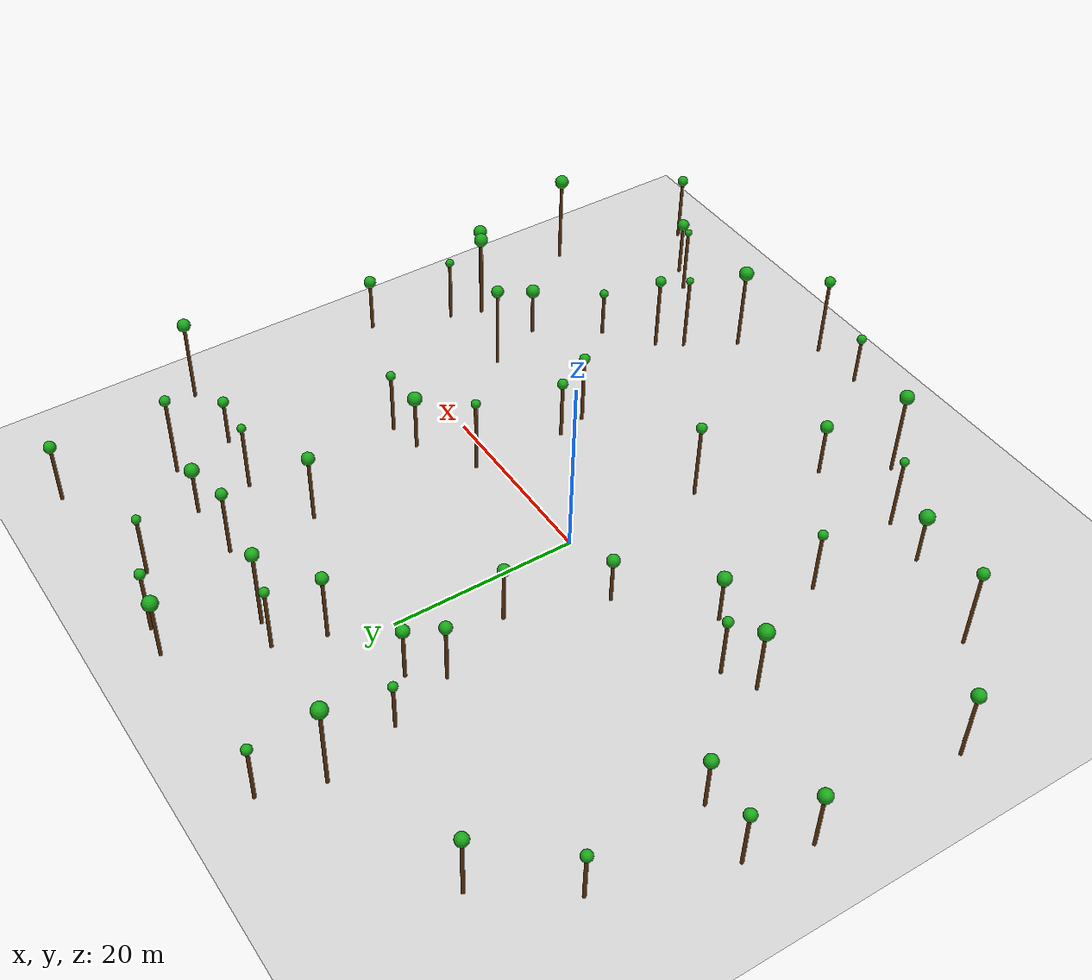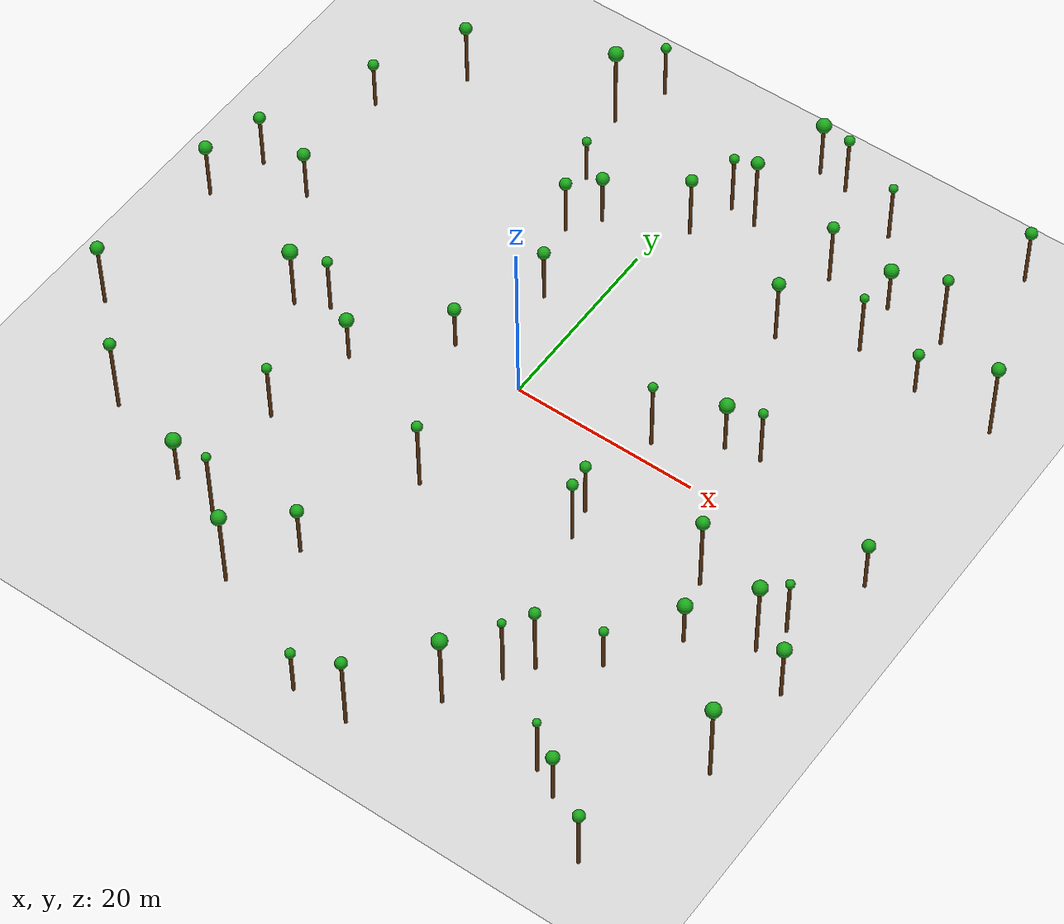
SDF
<sdf version="1.6">
 <world name="forest_world">
  <include><uri>model://sun</uri></include>
  <include><uri>model://ground_plane</uri></include>
  <model name="tree_400">
   <static>true</static>
   <link name="tree_link">
    <collision name="trunk_collision">
     <pose>20.07 -25.08 4.24 0 0 0</pose>
     <geometry><cylinder><radius>0.18</radius><length>8.49</length></cylinder></geometry>
    </collision>
    <visual name="trunk_visual">
     <pose>20.07 -25.08 4.24 0 0 0</pose>
     <geometry><cylinder><radius>0.18</radius><length>8.49</length></cylinder></geometry>
     <material><ambient>0.35 0.20 0.05 1</ambient><diffuse>0.45 0.25 0.08 1</diffuse></material>
    </visual>
    <visual name="leaf_visual">
     <pose>20.07 -25.08 8.78 0 0 0</pose>
     <geometry><sphere><radius>0.58</radius></sphere></geometry>
     <material><ambient>0.05 0.45 0.05 1</ambient><diffuse>0.10 0.65 0.10 1</diffuse></material>
    </visual>
   </link>
  </model>
  <model name="tree_401">
   <static>true</static>
   <link name="tree_link">
    <collision name="trunk_collision">
     <pose>14.07 2.12 4.24 0 0 0</pose>
     <geometry><cylinder><radius>0.18</radius><length>8.47</length></cylinder></geometry>
    </collision>
    <visual name="trunk_visual">
     <pose>14.07 2.12 4.24 0 0 0</pose>
     <geometry><cylinder><radius>0.18</radius><length>8.47</length></cylinder></geometry>
     <material><ambient>0.35 0.20 0.05 1</ambient><diffuse>0.45 0.25 0.08 1</diffuse></material>
    </visual>
    <visual name="leaf_visual">
     <pose>14.07 2.12 8.71 0 0 0</pose>
     <geometry><sphere><radius>0.48</radius></sphere></geometry>
     <material><ambient>0.05 0.45 0.05 1</ambient><diffuse>0.10 0.65 0.10 1</diffuse></material>
    </visual>
   </link>
  </model>
  <model name="tree_402">
   <static>true</static>
   <link name="tree_link">
    <collision name="trunk_collision">
     <pose>15.32 -32.93 4.66 0 0 0</pose>
     <geometry><cylinder><radius>0.18</radius><length>9.32</length></cylinder></geometry>
    </collision>
    <visual name="trunk_visual">
     <pose>15.32 -32.93 4.66 0 0 0</pose>
     <geometry><cylinder><radius>0.18</radius><length>9.32</length></cylinder></geometry>
     <material><ambient>0.35 0.20 0.05 1</ambient><diffuse>0.45 0.25 0.08 1</diffuse></material>
    </visual>
    <visual name="leaf_visual">
     <pose>15.32 -32.93 9.71 0 0 0</pose>
     <geometry><sphere><radius>0.78</radius></sphere></geometry>
     <material><ambient>0.05 0.45 0.05 1</ambient><diffuse>0.10 0.65 0.10 1</diffuse></material>
    </visual>
   </link>
  </model>
  <model name="tree_403">
   <static>true</static>
   <link name="tree_link">
    <collision name="trunk_collision">
     <pose>-20.90 -2.49 3.39 0 0 0</pose>
     <geometry><cylinder><radius>0.18</radius><length>6.78</length></cylinder></geometry>
    </collision>
    <visual name="trunk_visual">
     <pose>-20.90 -2.49 3.39 0 0 0</pose>
     <geometry><cylinder><radius>0.18</radius><length>6.78</length></cylinder></geometry>
     <material><ambient>0.35 0.20 0.05 1</ambient><diffuse>0.45 0.25 0.08 1</diffuse></material>
    </visual>
    <visual name="leaf_visual">
     <pose>-20.90 -2.49 7.05 0 0 0</pose>
     <geometry><sphere><radius>0.54</radius></sphere></geometry>
     <material><ambient>0.05 0.45 0.05 1</ambient><diffuse>0.10 0.65 0.10 1</diffuse></material>
    </visual>
   </link>
  </model>
  <model name="tree_404">
   <static>true</static>
   <link name="tree_link">
    <collision name="trunk_collision">
     <pose>24.95 -21.26 2.62 0 0 0</pose>
     <geometry><cylinder><radius>0.18</radius><length>5.25</length></cylinder></geometry>
    </collision>
    <visual name="trunk_visual">
     <pose>24.95 -21.26 2.62 0 0 0</pose>
     <geometry><cylinder><radius>0.18</radius><length>5.25</length></cylinder></geometry>
     <material><ambient>0.35 0.20 0.05 1</ambient><diffuse>0.45 0.25 0.08 1</diffuse></material>
    </visual>
    <visual name="leaf_visual">
     <pose>24.95 -21.26 5.48 0 0 0</pose>
     <geometry><sphere><radius>0.48</radius></sphere></geometry>
     <material><ambient>0.05 0.45 0.05 1</ambient><diffuse>0.10 0.65 0.10 1</diffuse></material>
    </visual>
   </link>
  </model>
  <model name="tree_405">
   <static>true</static>
   <link name="tree_link">
    <collision name="trunk_collision">
     <pose>-5.77 22.15 2.95 0 0 0</pose>
     <geometry><cylinder><radius>0.18</radius><length>5.91</length></cylinder></geometry>
    </collision>
    <visual name="trunk_visual">
     <pose>-5.77 22.15 2.95 0 0 0</pose>
     <geometry><cylinder><radius>0.18</radius><length>5.91</length></cylinder></geometry>
     <material><ambient>0.35 0.20 0.05 1</ambient><diffuse>0.45 0.25 0.08 1</diffuse></material>
    </visual>
    <visual name="leaf_visual">
     <pose>-5.77 22.15 6.25 0 0 0</pose>
     <geometry><sphere><radius>0.68</radius></sphere></geometry>
     <material><ambient>0.05 0.45 0.05 1</ambient><diffuse>0.10 0.65 0.10 1</diffuse></material>
    </visual>
   </link>
  </model>
  <model name="tree_406">
   <static>true</static>
   <link name="tree_link">
    <collision name="trunk_collision">
     <pose>11.85 39.43 3.64 0 0 0</pose>
     <geometry><cylinder><radius>0.18</radius><length>7.28</length></cylinder></geometry>
    </collision>
    <visual name="trunk_visual">
     <pose>11.85 39.43 3.64 0 0 0</pose>
     <geometry><cylinder><radius>0.18</radius><length>7.28</length></cylinder></geometry>
     <material><ambient>0.35 0.20 0.05 1</ambient><diffuse>0.45 0.25 0.08 1</diffuse></material>
    </visual>
    <visual name="leaf_visual">
     <pose>11.85 39.43 7.56 0 0 0</pose>
     <geometry><sphere><radius>0.55</radius></sphere></geometry>
     <material><ambient>0.05 0.45 0.05 1</ambient><diffuse>0.10 0.65 0.10 1</diffuse></material>
    </visual>
   </link>
  </model>
  <model name="tree_407">
   <static>true</static>
   <link name="tree_link">
    <collision name="trunk_collision">
     <pose>26.60 -33.84 3.78 0 0 0</pose>
     <geometry><cylinder><radius>0.18</radius><length>7.57</length></cylinder></geometry>
    </collision>
    <visual name="trunk_visual">
     <pose>26.60 -33.84 3.78 0 0 0</pose>
     <geometry><cylinder><radius>0.18</radius><length>7.57</length></cylinder></geometry>
     <material><ambient>0.35 0.20 0.05 1</ambient><diffuse>0.45 0.25 0.08 1</diffuse></material>
    </visual>
    <visual name="leaf_visual">
     <pose>26.60 -33.84 7.77 0 0 0</pose>
     <geometry><sphere><radius>0.41</radius></sphere></geometry>
     <material><ambient>0.05 0.45 0.05 1</ambient><diffuse>0.10 0.65 0.10 1</diffuse></material>
    </visual>
   </link>
  </model>
  <model name="tree_408">
   <static>true</static>
   <link name="tree_link">
    <collision name="trunk_collision">
     <pose>24.07 23.14 3.86 0 0 0</pose>
     <geometry><cylinder><radius>0.18</radius><length>7.72</length></cylinder></geometry>
    </collision>
    <visual name="trunk_visual">
     <pose>24.07 23.14 3.86 0 0 0</pose>
     <geometry><cylinder><radius>0.18</radius><length>7.72</length></cylinder></geometry>
     <material><ambient>0.35 0.20 0.05 1</ambient><diffuse>0.45 0.25 0.08 1</diffuse></material>
    </visual>
    <visual name="leaf_visual">
     <pose>24.07 23.14 7.95 0 0 0</pose>
     <geometry><sphere><radius>0.45</radius></sphere></geometry>
     <material><ambient>0.05 0.45 0.05 1</ambient><diffuse>0.10 0.65 0.10 1</diffuse></material>
    </visual>
   </link>
  </model>
  <model name="tree_409">
   <static>true</static>
   <link name="tree_link">
    <collision name="trunk_collision">
     <pose>2.27 25.84 3.80 0 0 0</pose>
     <geometry><cylinder><radius>0.18</radius><length>7.60</length></cylinder></geometry>
    </collision>
    <visual name="trunk_visual">
     <pose>2.27 25.84 3.80 0 0 0</pose>
     <geometry><cylinder><radius>0.18</radius><length>7.60</length></cylinder></geometry>
     <material><ambient>0.35 0.20 0.05 1</ambient><diffuse>0.45 0.25 0.08 1</diffuse></material>
    </visual>
    <visual name="leaf_visual">
     <pose>2.27 25.84 7.91 0 0 0</pose>
     <geometry><sphere><radius>0.64</radius></sphere></geometry>
     <material><ambient>0.05 0.45 0.05 1</ambient><diffuse>0.10 0.65 0.10 1</diffuse></material>
    </visual>
   </link>
  </model>
  <model name="tree_410">
   <static>true</static>
   <link name="tree_link">
    <collision name="trunk_collision">
     <pose>6.94 30.35 4.53 0 0 0</pose>
     <geometry><cylinder><radius>0.18</radius><length>9.06</length></cylinder></geometry>
    </collision>
    <visual name="trunk_visual">
     <pose>6.94 30.35 4.53 0 0 0</pose>
     <geometry><cylinder><radius>0.18</radius><length>9.06</length></cylinder></geometry>
     <material><ambient>0.35 0.20 0.05 1</ambient><diffuse>0.45 0.25 0.08 1</diffuse></material>
    </visual>
    <visual name="leaf_visual">
     <pose>6.94 30.35 9.39 0 0 0</pose>
     <geometry><sphere><radius>0.68</radius></sphere></geometry>
     <material><ambient>0.05 0.45 0.05 1</ambient><diffuse>0.10 0.65 0.10 1</diffuse></material>
    </visual>
   </link>
  </model>
  <model name="tree_411">
   <static>true</static>
   <link name="tree_link">
    <collision name="trunk_collision">
     <pose>39.56 0.02 3.00 0 0 0</pose>
     <geometry><cylinder><radius>0.18</radius><length>6.00</length></cylinder></geometry>
    </collision>
    <visual name="trunk_visual">
     <pose>39.56 0.02 3.00 0 0 0</pose>
     <geometry><cylinder><radius>0.18</radius><length>6.00</length></cylinder></geometry>
     <material><ambient>0.35 0.20 0.05 1</ambient><diffuse>0.45 0.25 0.08 1</diffuse></material>
    </visual>
    <visual name="leaf_visual">
     <pose>39.56 0.02 6.33 0 0 0</pose>
     <geometry><sphere><radius>0.66</radius></sphere></geometry>
     <material><ambient>0.05 0.45 0.05 1</ambient><diffuse>0.10 0.65 0.10 1</diffuse></material>
    </visual>
   </link>
  </model>
  <model name="tree_412">
   <static>true</static>
   <link name="tree_link">
    <collision name="trunk_collision">
     <pose>-0.99 -14.54 4.34 0 0 0</pose>
     <geometry><cylinder><radius>0.18</radius><length>8.68</length></cylinder></geometry>
    </collision>
    <visual name="trunk_visual">
     <pose>-0.99 -14.54 4.34 0 0 0</pose>
     <geometry><cylinder><radius>0.18</radius><length>8.68</length></cylinder></geometry>
     <material><ambient>0.35 0.20 0.05 1</ambient><diffuse>0.45 0.25 0.08 1</diffuse></material>
    </visual>
    <visual name="leaf_visual">
     <pose>-0.99 -14.54 8.96 0 0 0</pose>
     <geometry><sphere><radius>0.55</radius></sphere></geometry>
     <material><ambient>0.05 0.45 0.05 1</ambient><diffuse>0.10 0.65 0.10 1</diffuse></material>
    </visual>
   </link>
  </model>
  <model name="tree_413">
   <static>true</static>
   <link name="tree_link">
    <collision name="trunk_collision">
     <pose>-37.86 8.44 3.28 0 0 0</pose>
     <geometry><cylinder><radius>0.18</radius><length>6.56</length></cylinder></geometry>
    </collision>
    <visual name="trunk_visual">
     <pose>-37.86 8.44 3.28 0 0 0</pose>
     <geometry><cylinder><radius>0.18</radius><length>6.56</length></cylinder></geometry>
     <material><ambient>0.35 0.20 0.05 1</ambient><diffuse>0.45 0.25 0.08 1</diffuse></material>
    </visual>
    <visual name="leaf_visual">
     <pose>-37.86 8.44 6.87 0 0 0</pose>
     <geometry><sphere><radius>0.61</radius></sphere></geometry>
     <material><ambient>0.05 0.45 0.05 1</ambient><diffuse>0.10 0.65 0.10 1</diffuse></material>
    </visual>
   </link>
  </model>
  <model name="tree_414">
   <static>true</static>
   <link name="tree_link">
    <collision name="trunk_collision">
     <pose>18.64 36.85 3.55 0 0 0</pose>
     <geometry><cylinder><radius>0.18</radius><length>7.11</length></cylinder></geometry>
    </collision>
    <visual name="trunk_visual">
     <pose>18.64 36.85 3.55 0 0 0</pose>
     <geometry><cylinder><radius>0.18</radius><length>7.11</length></cylinder></geometry>
     <material><ambient>0.35 0.20 0.05 1</ambient><diffuse>0.45 0.25 0.08 1</diffuse></material>
    </visual>
    <visual name="leaf_visual">
     <pose>18.64 36.85 7.34 0 0 0</pose>
     <geometry><sphere><radius>0.47</radius></sphere></geometry>
     <material><ambient>0.05 0.45 0.05 1</ambient><diffuse>0.10 0.65 0.10 1</diffuse></material>
    </visual>
   </link>
  </model>
  <model name="tree_415">
   <static>true</static>
   <link name="tree_link">
    <collision name="trunk_collision">
     <pose>-10.23 25.73 2.65 0 0 0</pose>
     <geometry><cylinder><radius>0.18</radius><length>5.30</length></cylinder></geometry>
    </collision>
    <visual name="trunk_visual">
     <pose>-10.23 25.73 2.65 0 0 0</pose>
     <geometry><cylinder><radius>0.18</radius><length>5.30</length></cylinder></geometry>
     <material><ambient>0.35 0.20 0.05 1</ambient><diffuse>0.45 0.25 0.08 1</diffuse></material>
    </visual>
    <visual name="leaf_visual">
     <pose>-10.23 25.73 5.54 0 0 0</pose>
     <geometry><sphere><radius>0.48</radius></sphere></geometry>
     <material><ambient>0.05 0.45 0.05 1</ambient><diffuse>0.10 0.65 0.10 1</diffuse></material>
    </visual>
   </link>
  </model>
  <model name="tree_416">
   <static>true</static>
   <link name="tree_link">
    <collision name="trunk_collision">
     <pose>-39.71 2.19 3.30 0 0 0</pose>
     <geometry><cylinder><radius>0.18</radius><length>6.60</length></cylinder></geometry>
    </collision>
    <visual name="trunk_visual">
     <pose>-39.71 2.19 3.30 0 0 0</pose>
     <geometry><cylinder><radius>0.18</radius><length>6.60</length></cylinder></geometry>
     <material><ambient>0.35 0.20 0.05 1</ambient><diffuse>0.45 0.25 0.08 1</diffuse></material>
    </visual>
    <visual name="leaf_visual">
     <pose>-39.71 2.19 6.95 0 0 0</pose>
     <geometry><sphere><radius>0.70</radius></sphere></geometry>
     <material><ambient>0.05 0.45 0.05 1</ambient><diffuse>0.10 0.65 0.10 1</diffuse></material>
    </visual>
   </link>
  </model>
  <model name="tree_417">
   <static>true</static>
   <link name="tree_link">
    <collision name="trunk_collision">
     <pose>-8.99 -33.80 4.73 0 0 0</pose>
     <geometry><cylinder><radius>0.18</radius><length>9.46</length></cylinder></geometry>
    </collision>
    <visual name="trunk_visual">
     <pose>-8.99 -33.80 4.73 0 0 0</pose>
     <geometry><cylinder><radius>0.18</radius><length>9.46</length></cylinder></geometry>
     <material><ambient>0.35 0.20 0.05 1</ambient><diffuse>0.45 0.25 0.08 1</diffuse></material>
    </visual>
    <visual name="leaf_visual">
     <pose>-8.99 -33.80 9.84 0 0 0</pose>
     <geometry><sphere><radius>0.75</radius></sphere></geometry>
     <material><ambient>0.05 0.45 0.05 1</ambient><diffuse>0.10 0.65 0.10 1</diffuse></material>
    </visual>
   </link>
  </model>
  <model name="tree_418">
   <static>true</static>
   <link name="tree_link">
    <collision name="trunk_collision">
     <pose>-8.01 19.00 3.32 0 0 0</pose>
     <geometry><cylinder><radius>0.18</radius><length>6.64</length></cylinder></geometry>
    </collision>
    <visual name="trunk_visual">
     <pose>-8.01 19.00 3.32 0 0 0</pose>
     <geometry><cylinder><radius>0.18</radius><length>6.64</length></cylinder></geometry>
     <material><ambient>0.35 0.20 0.05 1</ambient><diffuse>0.45 0.25 0.08 1</diffuse></material>
    </visual>
    <visual name="leaf_visual">
     <pose>-8.01 19.00 6.96 0 0 0</pose>
     <geometry><sphere><radius>0.64</radius></sphere></geometry>
     <material><ambient>0.05 0.45 0.05 1</ambient><diffuse>0.10 0.65 0.10 1</diffuse></material>
    </visual>
   </link>
  </model>
  <model name="tree_419">
   <static>true</static>
   <link name="tree_link">
    <collision name="trunk_collision">
     <pose>-27.89 29.51 3.67 0 0 0</pose>
     <geometry><cylinder><radius>0.18</radius><length>7.34</length></cylinder></geometry>
    </collision>
    <visual name="trunk_visual">
     <pose>-27.89 29.51 3.67 0 0 0</pose>
     <geometry><cylinder><radius>0.18</radius><length>7.34</length></cylinder></geometry>
     <material><ambient>0.35 0.20 0.05 1</ambient><diffuse>0.45 0.25 0.08 1</diffuse></material>
    </visual>
    <visual name="leaf_visual">
     <pose>-27.89 29.51 7.67 0 0 0</pose>
     <geometry><sphere><radius>0.66</radius></sphere></geometry>
     <material><ambient>0.05 0.45 0.05 1</ambient><diffuse>0.10 0.65 0.10 1</diffuse></material>
    </visual>
   </link>
  </model>
  <model name="tree_420">
   <static>true</static>
   <link name="tree_link">
    <collision name="trunk_collision">
     <pose>23.66 6.43 3.55 0 0 0</pose>
     <geometry><cylinder><radius>0.18</radius><length>7.11</length></cylinder></geometry>
    </collision>
    <visual name="trunk_visual">
     <pose>23.66 6.43 3.55 0 0 0</pose>
     <geometry><cylinder><radius>0.18</radius><length>7.11</length></cylinder></geometry>
     <material><ambient>0.35 0.20 0.05 1</ambient><diffuse>0.45 0.25 0.08 1</diffuse></material>
    </visual>
    <visual name="leaf_visual">
     <pose>23.66 6.43 7.35 0 0 0</pose>
     <geometry><sphere><radius>0.49</radius></sphere></geometry>
     <material><ambient>0.05 0.45 0.05 1</ambient><diffuse>0.10 0.65 0.10 1</diffuse></material>
    </visual>
   </link>
  </model>
  <model name="tree_421">
   <static>true</static>
   <link name="tree_link">
    <collision name="trunk_collision">
     <pose>-5.39 -27.19 2.99 0 0 0</pose>
     <geometry><cylinder><radius>0.18</radius><length>5.98</length></cylinder></geometry>
    </collision>
    <visual name="trunk_visual">
     <pose>-5.39 -27.19 2.99 0 0 0</pose>
     <geometry><cylinder><radius>0.18</radius><length>5.98</length></cylinder></geometry>
     <material><ambient>0.35 0.20 0.05 1</ambient><diffuse>0.45 0.25 0.08 1</diffuse></material>
    </visual>
    <visual name="leaf_visual">
     <pose>-5.39 -27.19 6.31 0 0 0</pose>
     <geometry><sphere><radius>0.66</radius></sphere></geometry>
     <material><ambient>0.05 0.45 0.05 1</ambient><diffuse>0.10 0.65 0.10 1</diffuse></material>
    </visual>
   </link>
  </model>
  <model name="tree_422">
   <static>true</static>
   <link name="tree_link">
    <collision name="trunk_collision">
     <pose>-15.72 -6.30 2.66 0 0 0</pose>
     <geometry><cylinder><radius>0.18</radius><length>5.32</length></cylinder></geometry>
    </collision>
    <visual name="trunk_visual">
     <pose>-15.72 -6.30 2.66 0 0 0</pose>
     <geometry><cylinder><radius>0.18</radius><length>5.32</length></cylinder></geometry>
     <material><ambient>0.35 0.20 0.05 1</ambient><diffuse>0.45 0.25 0.08 1</diffuse></material>
    </visual>
    <visual name="leaf_visual">
     <pose>-15.72 -6.30 5.69 0 0 0</pose>
     <geometry><sphere><radius>0.74</radius></sphere></geometry>
     <material><ambient>0.05 0.45 0.05 1</ambient><diffuse>0.10 0.65 0.10 1</diffuse></material>
    </visual>
   </link>
  </model>
  <model name="tree_423">
   <static>true</static>
   <link name="tree_link">
    <collision name="trunk_collision">
     <pose>-30.11 -23.80 4.56 0 0 0</pose>
     <geometry><cylinder><radius>0.18</radius><length>9.12</length></cylinder></geometry>
    </collision>
    <visual name="trunk_visual">
     <pose>-30.11 -23.80 4.56 0 0 0</pose>
     <geometry><cylinder><radius>0.18</radius><length>9.12</length></cylinder></geometry>
     <material><ambient>0.35 0.20 0.05 1</ambient><diffuse>0.45 0.25 0.08 1</diffuse></material>
    </visual>
    <visual name="leaf_visual">
     <pose>-30.11 -23.80 9.43 0 0 0</pose>
     <geometry><sphere><radius>0.61</radius></sphere></geometry>
     <material><ambient>0.05 0.45 0.05 1</ambient><diffuse>0.10 0.65 0.10 1</diffuse></material>
    </visual>
   </link>
  </model>
  <model name="tree_424">
   <static>true</static>
   <link name="tree_link">
    <collision name="trunk_collision">
     <pose>35.11 -39.44 3.70 0 0 0</pose>
     <geometry><cylinder><radius>0.18</radius><length>7.41</length></cylinder></geometry>
    </collision>
    <visual name="trunk_visual">
     <pose>35.11 -39.44 3.70 0 0 0</pose>
     <geometry><cylinder><radius>0.18</radius><length>7.41</length></cylinder></geometry>
     <material><ambient>0.35 0.20 0.05 1</ambient><diffuse>0.45 0.25 0.08 1</diffuse></material>
    </visual>
    <visual name="leaf_visual">
     <pose>35.11 -39.44 7.71 0 0 0</pose>
     <geometry><sphere><radius>0.60</radius></sphere></geometry>
     <material><ambient>0.05 0.45 0.05 1</ambient><diffuse>0.10 0.65 0.10 1</diffuse></material>
    </visual>
   </link>
  </model>
  <model name="tree_425">
   <static>true</static>
   <link name="tree_link">
    <collision name="trunk_collision">
     <pose>14.33 -11.22 4.01 0 0 0</pose>
     <geometry><cylinder><radius>0.18</radius><length>8.01</length></cylinder></geometry>
    </collision>
    <visual name="trunk_visual">
     <pose>14.33 -11.22 4.01 0 0 0</pose>
     <geometry><cylinder><radius>0.18</radius><length>8.01</length></cylinder></geometry>
     <material><ambient>0.35 0.20 0.05 1</ambient><diffuse>0.45 0.25 0.08 1</diffuse></material>
    </visual>
    <visual name="leaf_visual">
     <pose>14.33 -11.22 8.30 0 0 0</pose>
     <geometry><sphere><radius>0.57</radius></sphere></geometry>
     <material><ambient>0.05 0.45 0.05 1</ambient><diffuse>0.10 0.65 0.10 1</diffuse></material>
    </visual>
   </link>
  </model>
  <model name="tree_426">
   <static>true</static>
   <link name="tree_link">
    <collision name="trunk_collision">
     <pose>31.09 22.03 2.65 0 0 0</pose>
     <geometry><cylinder><radius>0.18</radius><length>5.31</length></cylinder></geometry>
    </collision>
    <visual name="trunk_visual">
     <pose>31.09 22.03 2.65 0 0 0</pose>
     <geometry><cylinder><radius>0.18</radius><length>5.31</length></cylinder></geometry>
     <material><ambient>0.35 0.20 0.05 1</ambient><diffuse>0.45 0.25 0.08 1</diffuse></material>
    </visual>
    <visual name="leaf_visual">
     <pose>31.09 22.03 5.59 0 0 0</pose>
     <geometry><sphere><radius>0.58</radius></sphere></geometry>
     <material><ambient>0.05 0.45 0.05 1</ambient><diffuse>0.10 0.65 0.10 1</diffuse></material>
    </visual>
   </link>
  </model>
  <model name="tree_427">
   <static>true</static>
   <link name="tree_link">
    <collision name="trunk_collision">
     <pose>20.07 5.73 3.09 0 0 0</pose>
     <geometry><cylinder><radius>0.18</radius><length>6.18</length></cylinder></geometry>
    </collision>
    <visual name="trunk_visual">
     <pose>20.07 5.73 3.09 0 0 0</pose>
     <geometry><cylinder><radius>0.18</radius><length>6.18</length></cylinder></geometry>
     <material><ambient>0.35 0.20 0.05 1</ambient><diffuse>0.45 0.25 0.08 1</diffuse></material>
    </visual>
    <visual name="leaf_visual">
     <pose>20.07 5.73 6.57 0 0 0</pose>
     <geometry><sphere><radius>0.77</radius></sphere></geometry>
     <material><ambient>0.05 0.45 0.05 1</ambient><diffuse>0.10 0.65 0.10 1</diffuse></material>
    </visual>
   </link>
  </model>
  <model name="tree_428">
   <static>true</static>
   <link name="tree_link">
    <collision name="trunk_collision">
     <pose>9.57 -39.74 4.63 0 0 0</pose>
     <geometry><cylinder><radius>0.18</radius><length>9.26</length></cylinder></geometry>
    </collision>
    <visual name="trunk_visual">
     <pose>9.57 -39.74 4.63 0 0 0</pose>
     <geometry><cylinder><radius>0.18</radius><length>9.26</length></cylinder></geometry>
     <material><ambient>0.35 0.20 0.05 1</ambient><diffuse>0.45 0.25 0.08 1</diffuse></material>
    </visual>
    <visual name="leaf_visual">
     <pose>9.57 -39.74 9.56 0 0 0</pose>
     <geometry><sphere><radius>0.59</radius></sphere></geometry>
     <material><ambient>0.05 0.45 0.05 1</ambient><diffuse>0.10 0.65 0.10 1</diffuse></material>
    </visual>
   </link>
  </model>
  <model name="tree_429">
   <static>true</static>
   <link name="tree_link">
    <collision name="trunk_collision">
     <pose>36.46 -8.40 3.65 0 0 0</pose>
     <geometry><cylinder><radius>0.18</radius><length>7.29</length></cylinder></geometry>
    </collision>
    <visual name="trunk_visual">
     <pose>36.46 -8.40 3.65 0 0 0</pose>
     <geometry><cylinder><radius>0.18</radius><length>7.29</length></cylinder></geometry>
     <material><ambient>0.35 0.20 0.05 1</ambient><diffuse>0.45 0.25 0.08 1</diffuse></material>
    </visual>
    <visual name="leaf_visual">
     <pose>36.46 -8.40 7.53 0 0 0</pose>
     <geometry><sphere><radius>0.46</radius></sphere></geometry>
     <material><ambient>0.05 0.45 0.05 1</ambient><diffuse>0.10 0.65 0.10 1</diffuse></material>
    </visual>
   </link>
  </model>
  <model name="tree_430">
   <static>true</static>
   <link name="tree_link">
    <collision name="trunk_collision">
     <pose>-14.90 -28.41 4.16 0 0 0</pose>
     <geometry><cylinder><radius>0.18</radius><length>8.31</length></cylinder></geometry>
    </collision>
    <visual name="trunk_visual">
     <pose>-14.90 -28.41 4.16 0 0 0</pose>
     <geometry><cylinder><radius>0.18</radius><length>8.31</length></cylinder></geometry>
     <material><ambient>0.35 0.20 0.05 1</ambient><diffuse>0.45 0.25 0.08 1</diffuse></material>
    </visual>
    <visual name="leaf_visual">
     <pose>-14.90 -28.41 8.54 0 0 0</pose>
     <geometry><sphere><radius>0.46</radius></sphere></geometry>
     <material><ambient>0.05 0.45 0.05 1</ambient><diffuse>0.10 0.65 0.10 1</diffuse></material>
    </visual>
   </link>
  </model>
  <model name="tree_431">
   <static>true</static>
   <link name="tree_link">
    <collision name="trunk_collision">
     <pose>-4.74 10.80 3.17 0 0 0</pose>
     <geometry><cylinder><radius>0.18</radius><length>6.34</length></cylinder></geometry>
    </collision>
    <visual name="trunk_visual">
     <pose>-4.74 10.80 3.17 0 0 0</pose>
     <geometry><cylinder><radius>0.18</radius><length>6.34</length></cylinder></geometry>
     <material><ambient>0.35 0.20 0.05 1</ambient><diffuse>0.45 0.25 0.08 1</diffuse></material>
    </visual>
    <visual name="leaf_visual">
     <pose>-4.74 10.80 6.67 0 0 0</pose>
     <geometry><sphere><radius>0.65</radius></sphere></geometry>
     <material><ambient>0.05 0.45 0.05 1</ambient><diffuse>0.10 0.65 0.10 1</diffuse></material>
    </visual>
   </link>
  </model>
  <model name="tree_432">
   <static>true</static>
   <link name="tree_link">
    <collision name="trunk_collision">
     <pose>-17.41 -16.32 3.57 0 0 0</pose>
     <geometry><cylinder><radius>0.18</radius><length>7.14</length></cylinder></geometry>
    </collision>
    <visual name="trunk_visual">
     <pose>-17.41 -16.32 3.57 0 0 0</pose>
     <geometry><cylinder><radius>0.18</radius><length>7.14</length></cylinder></geometry>
     <material><ambient>0.35 0.20 0.05 1</ambient><diffuse>0.45 0.25 0.08 1</diffuse></material>
    </visual>
    <visual name="leaf_visual">
     <pose>-17.41 -16.32 7.39 0 0 0</pose>
     <geometry><sphere><radius>0.51</radius></sphere></geometry>
     <material><ambient>0.05 0.45 0.05 1</ambient><diffuse>0.10 0.65 0.10 1</diffuse></material>
    </visual>
   </link>
  </model>
  <model name="tree_433">
   <static>true</static>
   <link name="tree_link">
    <collision name="trunk_collision">
     <pose>27.04 -8.67 4.67 0 0 0</pose>
     <geometry><cylinder><radius>0.18</radius><length>9.34</length></cylinder></geometry>
    </collision>
    <visual name="trunk_visual">
     <pose>27.04 -8.67 4.67 0 0 0</pose>
     <geometry><cylinder><radius>0.18</radius><length>9.34</length></cylinder></geometry>
     <material><ambient>0.35 0.20 0.05 1</ambient><diffuse>0.45 0.25 0.08 1</diffuse></material>
    </visual>
    <visual name="leaf_visual">
     <pose>27.04 -8.67 9.67 0 0 0</pose>
     <geometry><sphere><radius>0.67</radius></sphere></geometry>
     <material><ambient>0.05 0.45 0.05 1</ambient><diffuse>0.10 0.65 0.10 1</diffuse></material>
    </visual>
   </link>
  </model>
  <model name="tree_434">
   <static>true</static>
   <link name="tree_link">
    <collision name="trunk_collision">
     <pose>30.01 28.42 4.66 0 0 0</pose>
     <geometry><cylinder><radius>0.18</radius><length>9.33</length></cylinder></geometry>
    </collision>
    <visual name="trunk_visual">
     <pose>30.01 28.42 4.66 0 0 0</pose>
     <geometry><cylinder><radius>0.18</radius><length>9.33</length></cylinder></geometry>
     <material><ambient>0.35 0.20 0.05 1</ambient><diffuse>0.45 0.25 0.08 1</diffuse></material>
    </visual>
    <visual name="leaf_visual">
     <pose>30.01 28.42 9.61 0 0 0</pose>
     <geometry><sphere><radius>0.56</radius></sphere></geometry>
     <material><ambient>0.05 0.45 0.05 1</ambient><diffuse>0.10 0.65 0.10 1</diffuse></material>
    </visual>
   </link>
  </model>
  <model name="tree_435">
   <static>true</static>
   <link name="tree_link">
    <collision name="trunk_collision">
     <pose>-10.35 39.75 3.23 0 0 0</pose>
     <geometry><cylinder><radius>0.18</radius><length>6.47</length></cylinder></geometry>
    </collision>
    <visual name="trunk_visual">
     <pose>-10.35 39.75 3.23 0 0 0</pose>
     <geometry><cylinder><radius>0.18</radius><length>6.47</length></cylinder></geometry>
     <material><ambient>0.35 0.20 0.05 1</ambient><diffuse>0.45 0.25 0.08 1</diffuse></material>
    </visual>
    <visual name="leaf_visual">
     <pose>-10.35 39.75 6.73 0 0 0</pose>
     <geometry><sphere><radius>0.53</radius></sphere></geometry>
     <material><ambient>0.05 0.45 0.05 1</ambient><diffuse>0.10 0.65 0.10 1</diffuse></material>
    </visual>
   </link>
  </model>
  <model name="tree_436">
   <static>true</static>
   <link name="tree_link">
    <collision name="trunk_collision">
     <pose>29.38 -14.78 2.62 0 0 0</pose>
     <geometry><cylinder><radius>0.18</radius><length>5.25</length></cylinder></geometry>
    </collision>
    <visual name="trunk_visual">
     <pose>29.38 -14.78 2.62 0 0 0</pose>
     <geometry><cylinder><radius>0.18</radius><length>5.25</length></cylinder></geometry>
     <material><ambient>0.35 0.20 0.05 1</ambient><diffuse>0.45 0.25 0.08 1</diffuse></material>
    </visual>
    <visual name="leaf_visual">
     <pose>29.38 -14.78 5.62 0 0 0</pose>
     <geometry><sphere><radius>0.75</radius></sphere></geometry>
     <material><ambient>0.05 0.45 0.05 1</ambient><diffuse>0.10 0.65 0.10 1</diffuse></material>
    </visual>
   </link>
  </model>
  <model name="tree_437">
   <static>true</static>
   <link name="tree_link">
    <collision name="trunk_collision">
     <pose>3.56 -39.69 2.79 0 0 0</pose>
     <geometry><cylinder><radius>0.18</radius><length>5.59</length></cylinder></geometry>
    </collision>
    <visual name="trunk_visual">
     <pose>3.56 -39.69 2.79 0 0 0</pose>
     <geometry><cylinder><radius>0.18</radius><length>5.59</length></cylinder></geometry>
     <material><ambient>0.35 0.20 0.05 1</ambient><diffuse>0.45 0.25 0.08 1</diffuse></material>
    </visual>
    <visual name="leaf_visual">
     <pose>3.56 -39.69 5.84 0 0 0</pose>
     <geometry><sphere><radius>0.51</radius></sphere></geometry>
     <material><ambient>0.05 0.45 0.05 1</ambient><diffuse>0.10 0.65 0.10 1</diffuse></material>
    </visual>
   </link>
  </model>
  <model name="tree_438">
   <static>true</static>
   <link name="tree_link">
    <collision name="trunk_collision">
     <pose>-33.51 21.34 2.83 0 0 0</pose>
     <geometry><cylinder><radius>0.18</radius><length>5.66</length></cylinder></geometry>
    </collision>
    <visual name="trunk_visual">
     <pose>-33.51 21.34 2.83 0 0 0</pose>
     <geometry><cylinder><radius>0.18</radius><length>5.66</length></cylinder></geometry>
     <material><ambient>0.35 0.20 0.05 1</ambient><diffuse>0.45 0.25 0.08 1</diffuse></material>
    </visual>
    <visual name="leaf_visual">
     <pose>-33.51 21.34 5.94 0 0 0</pose>
     <geometry><sphere><radius>0.57</radius></sphere></geometry>
     <material><ambient>0.05 0.45 0.05 1</ambient><diffuse>0.10 0.65 0.10 1</diffuse></material>
    </visual>
   </link>
  </model>
  <model name="tree_439">
   <static>true</static>
   <link name="tree_link">
    <collision name="trunk_collision">
     <pose>18.33 -27.71 4.34 0 0 0</pose>
     <geometry><cylinder><radius>0.18</radius><length>8.69</length></cylinder></geometry>
    </collision>
    <visual name="trunk_visual">
     <pose>18.33 -27.71 4.34 0 0 0</pose>
     <geometry><cylinder><radius>0.18</radius><length>8.69</length></cylinder></geometry>
     <material><ambient>0.35 0.20 0.05 1</ambient><diffuse>0.45 0.25 0.08 1</diffuse></material>
    </visual>
    <visual name="leaf_visual">
     <pose>18.33 -27.71 8.90 0 0 0</pose>
     <geometry><sphere><radius>0.42</radius></sphere></geometry>
     <material><ambient>0.05 0.45 0.05 1</ambient><diffuse>0.10 0.65 0.10 1</diffuse></material>
    </visual>
   </link>
  </model>
  <model name="tree_440">
   <static>true</static>
   <link name="tree_link">
    <collision name="trunk_collision">
     <pose>-31.66 7.56 2.97 0 0 0</pose>
     <geometry><cylinder><radius>0.18</radius><length>5.94</length></cylinder></geometry>
    </collision>
    <visual name="trunk_visual">
     <pose>-31.66 7.56 2.97 0 0 0</pose>
     <geometry><cylinder><radius>0.18</radius><length>5.94</length></cylinder></geometry>
     <material><ambient>0.35 0.20 0.05 1</ambient><diffuse>0.45 0.25 0.08 1</diffuse></material>
    </visual>
    <visual name="leaf_visual">
     <pose>-31.66 7.56 6.27 0 0 0</pose>
     <geometry><sphere><radius>0.67</radius></sphere></geometry>
     <material><ambient>0.05 0.45 0.05 1</ambient><diffuse>0.10 0.65 0.10 1</diffuse></material>
    </visual>
   </link>
  </model>
  <model name="tree_441">
   <static>true</static>
   <link name="tree_link">
    <collision name="trunk_collision">
     <pose>23.48 29.10 2.68 0 0 0</pose>
     <geometry><cylinder><radius>0.18</radius><length>5.37</length></cylinder></geometry>
    </collision>
    <visual name="trunk_visual">
     <pose>23.48 29.10 2.68 0 0 0</pose>
     <geometry><cylinder><radius>0.18</radius><length>5.37</length></cylinder></geometry>
     <material><ambient>0.35 0.20 0.05 1</ambient><diffuse>0.45 0.25 0.08 1</diffuse></material>
    </visual>
    <visual name="leaf_visual">
     <pose>23.48 29.10 5.75 0 0 0</pose>
     <geometry><sphere><radius>0.76</radius></sphere></geometry>
     <material><ambient>0.05 0.45 0.05 1</ambient><diffuse>0.10 0.65 0.10 1</diffuse></material>
    </visual>
   </link>
  </model>
  <model name="tree_442">
   <static>true</static>
   <link name="tree_link">
    <collision name="trunk_collision">
     <pose>39.61 21.91 4.70 0 0 0</pose>
     <geometry><cylinder><radius>0.18</radius><length>9.40</length></cylinder></geometry>
    </collision>
    <visual name="trunk_visual">
     <pose>39.61 21.91 4.70 0 0 0</pose>
     <geometry><cylinder><radius>0.18</radius><length>9.40</length></cylinder></geometry>
     <material><ambient>0.35 0.20 0.05 1</ambient><diffuse>0.45 0.25 0.08 1</diffuse></material>
    </visual>
    <visual name="leaf_visual">
     <pose>39.61 21.91 9.75 0 0 0</pose>
     <geometry><sphere><radius>0.70</radius></sphere></geometry>
     <material><ambient>0.05 0.45 0.05 1</ambient><diffuse>0.10 0.65 0.10 1</diffuse></material>
    </visual>
   </link>
  </model>
  <model name="tree_443">
   <static>true</static>
   <link name="tree_link">
    <collision name="trunk_collision">
     <pose>13.55 -8.03 3.34 0 0 0</pose>
     <geometry><cylinder><radius>0.18</radius><length>6.68</length></cylinder></geometry>
    </collision>
    <visual name="trunk_visual">
     <pose>13.55 -8.03 3.34 0 0 0</pose>
     <geometry><cylinder><radius>0.18</radius><length>6.68</length></cylinder></geometry>
     <material><ambient>0.35 0.20 0.05 1</ambient><diffuse>0.45 0.25 0.08 1</diffuse></material>
    </visual>
    <visual name="leaf_visual">
     <pose>13.55 -8.03 6.96 0 0 0</pose>
     <geometry><sphere><radius>0.56</radius></sphere></geometry>
     <material><ambient>0.05 0.45 0.05 1</ambient><diffuse>0.10 0.65 0.10 1</diffuse></material>
    </visual>
   </link>
  </model>
  <model name="tree_444">
   <static>true</static>
   <link name="tree_link">
    <collision name="trunk_collision">
     <pose>-19.97 -27.27 2.78 0 0 0</pose>
     <geometry><cylinder><radius>0.18</radius><length>5.57</length></cylinder></geometry>
    </collision>
    <visual name="trunk_visual">
     <pose>-19.97 -27.27 2.78 0 0 0</pose>
     <geometry><cylinder><radius>0.18</radius><length>5.57</length></cylinder></geometry>
     <material><ambient>0.35 0.20 0.05 1</ambient><diffuse>0.45 0.25 0.08 1</diffuse></material>
    </visual>
    <visual name="leaf_visual">
     <pose>-19.97 -27.27 5.96 0 0 0</pose>
     <geometry><sphere><radius>0.79</radius></sphere></geometry>
     <material><ambient>0.05 0.45 0.05 1</ambient><diffuse>0.10 0.65 0.10 1</diffuse></material>
    </visual>
   </link>
  </model>
  <model name="tree_445">
   <static>true</static>
   <link name="tree_link">
    <collision name="trunk_collision">
     <pose>39.88 -14.50 3.44 0 0 0</pose>
     <geometry><cylinder><radius>0.18</radius><length>6.88</length></cylinder></geometry>
    </collision>
    <visual name="trunk_visual">
     <pose>39.88 -14.50 3.44 0 0 0</pose>
     <geometry><cylinder><radius>0.18</radius><length>6.88</length></cylinder></geometry>
     <material><ambient>0.35 0.20 0.05 1</ambient><diffuse>0.45 0.25 0.08 1</diffuse></material>
    </visual>
    <visual name="leaf_visual">
     <pose>39.88 -14.50 7.25 0 0 0</pose>
     <geometry><sphere><radius>0.74</radius></sphere></geometry>
     <material><ambient>0.05 0.45 0.05 1</ambient><diffuse>0.10 0.65 0.10 1</diffuse></material>
    </visual>
   </link>
  </model>
  <model name="tree_446">
   <static>true</static>
   <link name="tree_link">
    <collision name="trunk_collision">
     <pose>-24.14 -4.10 3.74 0 0 0</pose>
     <geometry><cylinder><radius>0.18</radius><length>7.49</length></cylinder></geometry>
    </collision>
    <visual name="trunk_visual">
     <pose>-24.14 -4.10 3.74 0 0 0</pose>
     <geometry><cylinder><radius>0.18</radius><length>7.49</length></cylinder></geometry>
     <material><ambient>0.35 0.20 0.05 1</ambient><diffuse>0.45 0.25 0.08 1</diffuse></material>
    </visual>
    <visual name="leaf_visual">
     <pose>-24.14 -4.10 7.89 0 0 0</pose>
     <geometry><sphere><radius>0.80</radius></sphere></geometry>
     <material><ambient>0.05 0.45 0.05 1</ambient><diffuse>0.10 0.65 0.10 1</diffuse></material>
    </visual>
   </link>
  </model>
  <model name="tree_447">
   <static>true</static>
   <link name="tree_link">
    <collision name="trunk_collision">
     <pose>29.39 -35.33 3.11 0 0 0</pose>
     <geometry><cylinder><radius>0.18</radius><length>6.21</length></cylinder></geometry>
    </collision>
    <visual name="trunk_visual">
     <pose>29.39 -35.33 3.11 0 0 0</pose>
     <geometry><cylinder><radius>0.18</radius><length>6.21</length></cylinder></geometry>
     <material><ambient>0.35 0.20 0.05 1</ambient><diffuse>0.45 0.25 0.08 1</diffuse></material>
    </visual>
    <visual name="leaf_visual">
     <pose>29.39 -35.33 6.54 0 0 0</pose>
     <geometry><sphere><radius>0.66</radius></sphere></geometry>
     <material><ambient>0.05 0.45 0.05 1</ambient><diffuse>0.10 0.65 0.10 1</diffuse></material>
    </visual>
   </link>
  </model>
  <model name="tree_448">
   <static>true</static>
   <link name="tree_link">
    <collision name="trunk_collision">
     <pose>39.37 -25.18 4.99 0 0 0</pose>
     <geometry><cylinder><radius>0.18</radius><length>9.99</length></cylinder></geometry>
    </collision>
    <visual name="trunk_visual">
     <pose>39.37 -25.18 4.99 0 0 0</pose>
     <geometry><cylinder><radius>0.18</radius><length>9.99</length></cylinder></geometry>
     <material><ambient>0.35 0.20 0.05 1</ambient><diffuse>0.45 0.25 0.08 1</diffuse></material>
    </visual>
    <visual name="leaf_visual">
     <pose>39.37 -25.18 10.36 0 0 0</pose>
     <geometry><sphere><radius>0.76</radius></sphere></geometry>
     <material><ambient>0.05 0.45 0.05 1</ambient><diffuse>0.10 0.65 0.10 1</diffuse></material>
    </visual>
   </link>
  </model>
  <model name="tree_449">
   <static>true</static>
   <link name="tree_link">
    <collision name="trunk_collision">
     <pose>35.36 -11.81 4.81 0 0 0</pose>
     <geometry><cylinder><radius>0.18</radius><length>9.62</length></cylinder></geometry>
    </collision>
    <visual name="trunk_visual">
     <pose>35.36 -11.81 4.81 0 0 0</pose>
     <geometry><cylinder><radius>0.18</radius><length>9.62</length></cylinder></geometry>
     <material><ambient>0.35 0.20 0.05 1</ambient><diffuse>0.45 0.25 0.08 1</diffuse></material>
    </visual>
    <visual name="leaf_visual">
     <pose>35.36 -11.81 9.99 0 0 0</pose>
     <geometry><sphere><radius>0.75</radius></sphere></geometry>
     <material><ambient>0.05 0.45 0.05 1</ambient><diffuse>0.10 0.65 0.10 1</diffuse></material>
    </visual>
   </link>
  </model>
  <model name="tree_450">
   <static>true</static>
   <link name="tree_link">
    <collision name="trunk_collision">
     <pose>-12.32 33.70 4.80 0 0 0</pose>
     <geometry><cylinder><radius>0.18</radius><length>9.61</length></cylinder></geometry>
    </collision>
    <visual name="trunk_visual">
     <pose>-12.32 33.70 4.80 0 0 0</pose>
     <geometry><cylinder><radius>0.18</radius><length>9.61</length></cylinder></geometry>
     <material><ambient>0.35 0.20 0.05 1</ambient><diffuse>0.45 0.25 0.08 1</diffuse></material>
    </visual>
    <visual name="leaf_visual">
     <pose>-12.32 33.70 10.00 0 0 0</pose>
     <geometry><sphere><radius>0.79</radius></sphere></geometry>
     <material><ambient>0.05 0.45 0.05 1</ambient><diffuse>0.10 0.65 0.10 1</diffuse></material>
    </visual>
   </link>
  </model>
  <model name="tree_451">
   <static>true</static>
   <link name="tree_link">
    <collision name="trunk_collision">
     <pose>16.55 19.70 3.92 0 0 0</pose>
     <geometry><cylinder><radius>0.18</radius><length>7.84</length></cylinder></geometry>
    </collision>
    <visual name="trunk_visual">
     <pose>16.55 19.70 3.92 0 0 0</pose>
     <geometry><cylinder><radius>0.18</radius><length>7.84</length></cylinder></geometry>
     <material><ambient>0.35 0.20 0.05 1</ambient><diffuse>0.45 0.25 0.08 1</diffuse></material>
    </visual>
    <visual name="leaf_visual">
     <pose>16.55 19.70 8.17 0 0 0</pose>
     <geometry><sphere><radius>0.68</radius></sphere></geometry>
     <material><ambient>0.05 0.45 0.05 1</ambient><diffuse>0.10 0.65 0.10 1</diffuse></material>
    </visual>
   </link>
  </model>
  <model name="tree_452">
   <static>true</static>
   <link name="tree_link">
    <collision name="trunk_collision">
     <pose>32.52 39.95 3.41 0 0 0</pose>
     <geometry><cylinder><radius>0.18</radius><length>6.82</length></cylinder></geometry>
    </collision>
    <visual name="trunk_visual">
     <pose>32.52 39.95 3.41 0 0 0</pose>
     <geometry><cylinder><radius>0.18</radius><length>6.82</length></cylinder></geometry>
     <material><ambient>0.35 0.20 0.05 1</ambient><diffuse>0.45 0.25 0.08 1</diffuse></material>
    </visual>
    <visual name="leaf_visual">
     <pose>32.52 39.95 7.14 0 0 0</pose>
     <geometry><sphere><radius>0.64</radius></sphere></geometry>
     <material><ambient>0.05 0.45 0.05 1</ambient><diffuse>0.10 0.65 0.10 1</diffuse></material>
    </visual>
   </link>
  </model>
  <model name="tree_453">
   <static>true</static>
   <link name="tree_link">
    <collision name="trunk_collision">
     <pose>3.89 30.89 3.63 0 0 0</pose>
     <geometry><cylinder><radius>0.18</radius><length>7.25</length></cylinder></geometry>
    </collision>
    <visual name="trunk_visual">
     <pose>3.89 30.89 3.63 0 0 0</pose>
     <geometry><cylinder><radius>0.18</radius><length>7.25</length></cylinder></geometry>
     <material><ambient>0.35 0.20 0.05 1</ambient><diffuse>0.45 0.25 0.08 1</diffuse></material>
    </visual>
    <visual name="leaf_visual">
     <pose>3.89 30.89 7.50 0 0 0</pose>
     <geometry><sphere><radius>0.51</radius></sphere></geometry>
     <material><ambient>0.05 0.45 0.05 1</ambient><diffuse>0.10 0.65 0.10 1</diffuse></material>
    </visual>
   </link>
  </model>
  <model name="tree_454">
   <static>true</static>
   <link name="tree_link">
    <collision name="trunk_collision">
     <pose>-8.23 0.91 2.55 0 0 0</pose>
     <geometry><cylinder><radius>0.18</radius><length>5.11</length></cylinder></geometry>
    </collision>
    <visual name="trunk_visual">
     <pose>-8.23 0.91 2.55 0 0 0</pose>
     <geometry><cylinder><radius>0.18</radius><length>5.11</length></cylinder></geometry>
     <material><ambient>0.35 0.20 0.05 1</ambient><diffuse>0.45 0.25 0.08 1</diffuse></material>
    </visual>
    <visual name="leaf_visual">
     <pose>-8.23 0.91 5.44 0 0 0</pose>
     <geometry><sphere><radius>0.67</radius></sphere></geometry>
     <material><ambient>0.05 0.45 0.05 1</ambient><diffuse>0.10 0.65 0.10 1</diffuse></material>
    </visual>
   </link>
  </model>
  <model name="tree_455">
   <static>true</static>
   <link name="tree_link">
    <collision name="trunk_collision">
     <pose>-39.40 -14.67 3.90 0 0 0</pose>
     <geometry><cylinder><radius>0.18</radius><length>7.81</length></cylinder></geometry>
    </collision>
    <visual name="trunk_visual">
     <pose>-39.40 -14.67 3.90 0 0 0</pose>
     <geometry><cylinder><radius>0.18</radius><length>7.81</length></cylinder></geometry>
     <material><ambient>0.35 0.20 0.05 1</ambient><diffuse>0.45 0.25 0.08 1</diffuse></material>
    </visual>
    <visual name="leaf_visual">
     <pose>-39.40 -14.67 8.15 0 0 0</pose>
     <geometry><sphere><radius>0.69</radius></sphere></geometry>
     <material><ambient>0.05 0.45 0.05 1</ambient><diffuse>0.10 0.65 0.10 1</diffuse></material>
    </visual>
   </link>
  </model>
  <model name="tree_456">
   <static>true</static>
   <link name="tree_link">
    <collision name="trunk_collision">
     <pose>8.50 39.99 3.35 0 0 0</pose>
     <geometry><cylinder><radius>0.18</radius><length>6.71</length></cylinder></geometry>
    </collision>
    <visual name="trunk_visual">
     <pose>8.50 39.99 3.35 0 0 0</pose>
     <geometry><cylinder><radius>0.18</radius><length>6.71</length></cylinder></geometry>
     <material><ambient>0.35 0.20 0.05 1</ambient><diffuse>0.45 0.25 0.08 1</diffuse></material>
    </visual>
    <visual name="leaf_visual">
     <pose>8.50 39.99 7.10 0 0 0</pose>
     <geometry><sphere><radius>0.78</radius></sphere></geometry>
     <material><ambient>0.05 0.45 0.05 1</ambient><diffuse>0.10 0.65 0.10 1</diffuse></material>
    </visual>
   </link>
  </model>
  <model name="tree_457">
   <static>true</static>
   <link name="tree_link">
    <collision name="trunk_collision">
     <pose>16.84 28.82 3.82 0 0 0</pose>
     <geometry><cylinder><radius>0.18</radius><length>7.63</length></cylinder></geometry>
    </collision>
    <visual name="trunk_visual">
     <pose>16.84 28.82 3.82 0 0 0</pose>
     <geometry><cylinder><radius>0.18</radius><length>7.63</length></cylinder></geometry>
     <material><ambient>0.35 0.20 0.05 1</ambient><diffuse>0.45 0.25 0.08 1</diffuse></material>
    </visual>
    <visual name="leaf_visual">
     <pose>16.84 28.82 7.94 0 0 0</pose>
     <geometry><sphere><radius>0.61</radius></sphere></geometry>
     <material><ambient>0.05 0.45 0.05 1</ambient><diffuse>0.10 0.65 0.10 1</diffuse></material>
    </visual>
   </link>
  </model>
 </world>
</sdf>
